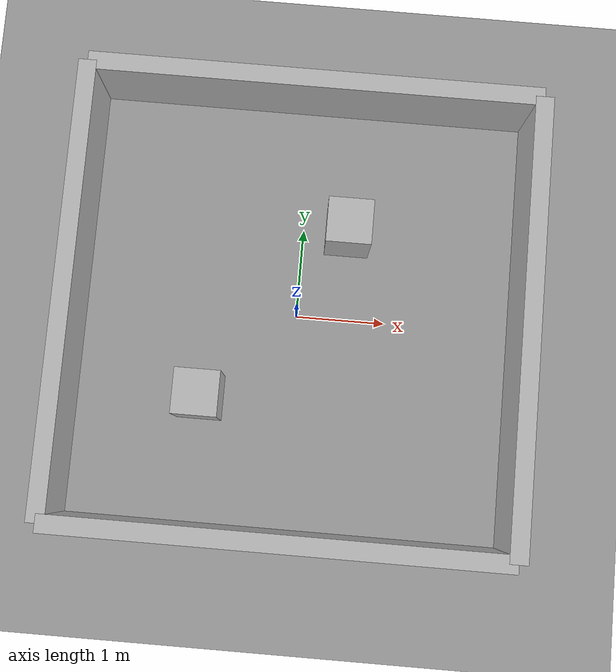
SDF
<?xml version="1.0"?>
<sdf version="1.9">
  <world name="amr_world">
    <plugin filename="gz-sim-physics-system" name="gz::sim::systems::Physics"></plugin>
    <plugin filename="gz-sim-user-commands-system" name="gz::sim::systems::UserCommands"></plugin>
    <plugin filename="gz-sim-scene-broadcaster-system" name="gz::sim::systems::SceneBroadcaster"></plugin>
    <plugin filename="gz-sim-sensors-system" name="gz::sim::systems::Sensors">
      <render_engine>ogre2</render_engine>
    </plugin>
    <plugin filename="gz-sim-imu-system" name="gz::sim::systems::Imu"></plugin>

    <light type="directional" name="sun">
      <cast_shadows>true</cast_shadows>
      <pose>0 0 10 0 0 0</pose>
      <diffuse>0.8 0.8 0.8 1</diffuse>
      <specular>0.2 0.2 0.2 1</specular>
      <direction>-0.5 0.1 -0.9</direction>
    </light>

    <model name="ground_plane">
      <static>true</static>
      <link name="link">
        <collision name="collision">
          <geometry><plane><normal>0 0 1</normal><size>20 20</size></plane></geometry>
        </collision>
        <visual name="visual">
          <geometry><plane><normal>0 0 1</normal><size>20 20</size></plane></geometry>
          <material>
            <ambient>0.6 0.6 0.6 1</ambient>
            <diffuse>0.6 0.6 0.6 1</diffuse>
          </material>
        </visual>
      </link>
    </model>

    <model name="wall_1">
      <static>true</static>
      <pose>2.5 0 0.5 0 0 0</pose>
      <link name="link">
        <collision name="collision"><geometry><box><size>0.2 5 1</size></box></geometry></collision>
        <visual name="visual"><geometry><box><size>0.2 5 1</size></box></geometry></visual>
      </link>
    </model>

    <model name="wall_2">
      <static>true</static>
      <pose>-2.5 0 0.5 0 0 0</pose>
      <link name="link">
        <collision name="collision"><geometry><box><size>0.2 5 1</size></box></geometry></collision>
        <visual name="visual"><geometry><box><size>0.2 5 1</size></box></geometry></visual>
      </link>
    </model>

    <model name="wall_3">
      <static>true</static>
      <pose>0 2.5 0.5 0 0 1.5708</pose>
      <link name="link">
        <collision name="collision"><geometry><box><size>0.2 5 1</size></box></geometry></collision>
        <visual name="visual"><geometry><box><size>0.2 5 1</size></box></geometry></visual>
      </link>
    </model>

    <model name="wall_4">
      <static>true</static>
      <pose>0 -2.5 0.5 0 0 1.5708</pose>
      <link name="link">
        <collision name="collision"><geometry><box><size>0.2 5 1</size></box></geometry></collision>
        <visual name="visual"><geometry><box><size>0.2 5 1</size></box></geometry></visual>
      </link>
    </model>

    <model name="obstacle_1">
      <static>true</static>
      <pose>0.5 1 0.4 0 0 0</pose>
      <link name="link">
        <collision name="collision"><geometry><box><size>0.5 0.5 0.8</size></box></geometry></collision>
        <visual name="visual"><geometry><box><size>0.5 0.5 0.8</size></box></geometry></visual>
      </link>
    </model>

    <model name="obstacle_2">
      <static>true</static>
      <pose>-1 -1 0.4 0 0 0</pose>
      <link name="link">
        <collision name="collision"><geometry><box><size>0.5 0.5 0.8</size></box></geometry></collision>
        <visual name="visual"><geometry><box><size>0.5 0.5 0.8</size></box></geometry></visual>
      </link>
    </model>
  </world>
</sdf>
